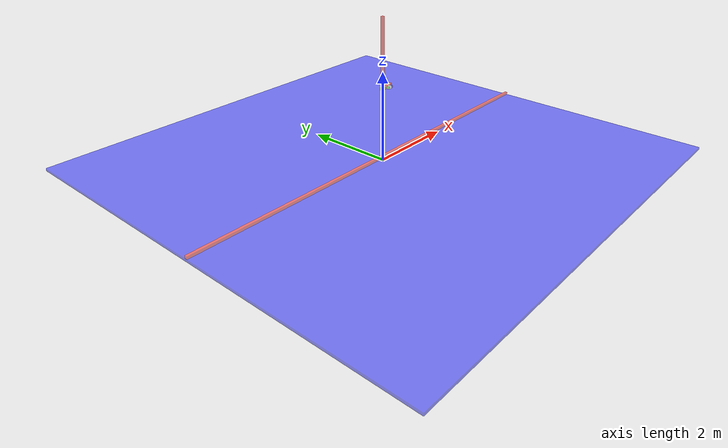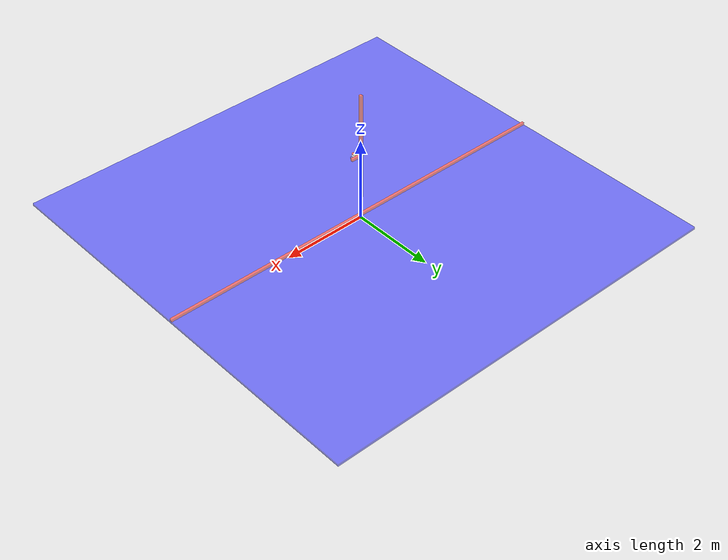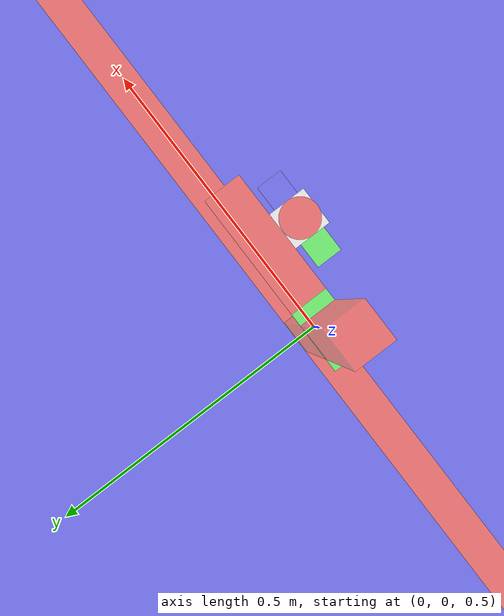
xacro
<robot xmlns:xacro="http://www.ros.org/wiki/xacro" name="robot">
  <xacro:property name="transparency" value="0.5" />

  <xacro:include filename="$(find arm_robot)/model/util/util.xacro" />

  <!-- |    for arm params   | -->
  <xacro:property name="link0_length" value="10.0" />
  <xacro:property name="link0_width" value="0.06" />

  <xacro:property name="link1_length" value="0.06" />
  <xacro:property name="link1_width" value="0.06" />

  <xacro:property name="link2_length" value="3.0" />
  <xacro:property name="link2_width" value="0.06" />

  <xacro:property name="link3_length" value="0.1" />
  <xacro:property name="link3_width" value="0.06" />

  <xacro:property name="link4_length" value="0.2" />
  <xacro:property name="link4_width" value="0.06" />

  <xacro:property name="platform_width" value="10.0" />
  <xacro:property name="platform_length" value="0.06" />
  <xacro:property name="platform_mass" value="1000000.0" />

  <xacro:property name="link0_mass" value="50000" />
  <xacro:property name="link1_mass" value="50000" />
  <xacro:property name="link2_mass" value="100" />
  <xacro:property name="link3_mass" value="10" />
  <xacro:property name="link4_mass" value="0.1" />

  <!-- |    for robot params   | -->

  <xacro:property name="base_box_size" value="0.06" />

  <xacro:property name="imu_box_size" value="0.04" />

  <xacro:property name="lidar_cylinder_radius" value="0.03" />
  <xacro:property name="lidar_cylinder_length" value="0.03" />

  <xacro:property name="arm_cylinder_radius" value="0.005" />
  <xacro:property name="arm_cylinder_length" value="0.03" />

  <xacro:property name="wheel_cylinder_radius" value="0.08" />
  <xacro:property name="wheel_cylinder_length" value="0.04" />
  <xacro:property name="ground_clearance" value="0.03" />

  <xacro:property name="camera_box_size" value="0.04" />

  <xacro:property name="PI" value="3.1415926535" />

  <xacro:property name="base_mass" value="0.001" />
  <xacro:property name="lidar_mass" value="0.001" />
  <xacro:property name="arm_mass" value="0.001" />
  <xacro:property name="imu_mass" value="0.001" />
  <xacro:property name="camera_mass" value="0.001" />

  <!-- | for link robot and arm| -->

  <xacro:include filename="$(find arm_robot)/model/arm/arm.xacro" />

  <xacro:include filename="$(find arm_robot)/model/robot/robot.xacro" />

  <xacro:gazebo-joint joint="link0_to_platform" transmission="hardware_interface/PositionJointInterface" />
  <xacro:gazebo-joint joint="link0_to_platform" transmission="hardware_interface/VelocityJointInterface" />
  <xacro:gazebo-joint joint="link0_to_platform" transmission="hardware_interface/EffortJointInterface" />

  <xacro:gazebo-joint joint="link1_to_link0" transmission="hardware_interface/PositionJointInterface" />
  <xacro:gazebo-joint joint="link1_to_link0" transmission="hardware_interface/VelocityJointInterface" />
  <xacro:gazebo-joint joint="link1_to_link0" transmission="hardware_interface/EffortJointInterface" />

  <xacro:gazebo-joint joint="link2_to_link1" transmission="hardware_interface/PositionJointInterface" />
  <xacro:gazebo-joint joint="link2_to_link1" transmission="hardware_interface/VelocityJointInterface" />
  <xacro:gazebo-joint joint="link2_to_link1" transmission="hardware_interface/EffortJointInterface" />

  <xacro:gazebo-joint joint="link3_to_link2" transmission="hardware_interface/PositionJointInterface" />
  <xacro:gazebo-joint joint="link3_to_link2" transmission="hardware_interface/VelocityJointInterface" />
  <xacro:gazebo-joint joint="link3_to_link2" transmission="hardware_interface/EffortJointInterface" />

  <xacro:gazebo-joint joint="link4_to_link3" transmission="hardware_interface/PositionJointInterface" />
  <xacro:gazebo-joint joint="link4_to_link3" transmission="hardware_interface/VelocityJointInterface" />
  <xacro:gazebo-joint joint="link4_to_link3" transmission="hardware_interface/EffortJointInterface" />

  <xacro:gazebo-joint joint="base_to_link4" transmission="hardware_interface/PositionJointInterface" />
  <xacro:gazebo-joint joint="base_to_link4" transmission="hardware_interface/VelocityJointInterface" />
  <xacro:gazebo-joint joint="base_to_link4" transmission="hardware_interface/EffortJointInterface" />

  <gazebo>
    <plugin name="gazebo_ros_control" filename="libgazebo_ros_control.so"></plugin>
  </gazebo>

</robot>

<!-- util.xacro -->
<robot xmlns:xacro="http://www.ros.org/wiki/xacro" name="macro">
  <xacro:macro name="cylinder_inertial_matrix" params="m r h">
    <inertial>
      <mass value="${m}" />
      <inertia ixx="${m*(3*r*r+h*h)/12}" ixy="0" ixz="0" iyy="${m*(3*r*r+h*h)/12}" iyz="0" izz="${m*r*r/2}" />
    </inertial>
  </xacro:macro>

  <xacro:macro name="box_inertial_matrix" params="m l w h">
    <inertial>
      <mass value="${m}" />
      <inertia ixx="${m*(h*h + l*l)/12}" ixy="0" ixz="0" iyy="${m*(w*w + l*l)/12}" iyz="0" izz="${m*(w*w + h*h)/12}" />
    </inertial>
  </xacro:macro>

  <xacro:macro name="sphere_inertial_matrix" params="m r">
    <inertial>
      <mass value="${m}" />
      <inertia ixx="${2*m*r*r/5}" ixy="0" ixz="0" iyy="${2*m*r*r/5}" iyz="0" izz="${2*m*r*r/5}" />
    </inertial>
  </xacro:macro>

  <xacro:macro name="gazebo-joint" params="joint transmission:=hardware_interface/EffortJointInterface">
    <gazebo reference="${joint}">
      <!-- Needed for ODE to output external wrenches on joints -->
      <provideFeedback>true</provideFeedback>
    </gazebo>

    <transmission name="${joint}_transmission">
      <type>transmission_interface/SimpleTransmission</type>
      <joint name="${joint}">
        <hardwareInterface>${transmission}</hardwareInterface>
      </joint>
      <actuator name="${joint}_motor">
        <hardwareInterface>${transmission}</hardwareInterface>
      </actuator>
    </transmission>
  </xacro:macro>

  <xacro:macro name="gazebo-friction" params="link mu">
    <gazebo reference="${link}">
      <collision>
        <max_contacts>10</max_contacts>
        <surface>
          <contact>
            <ode>
              <!-- These two parameter need application specific tuning. -->
              <!-- Usually you want no "snap out" velocity and a generous -->
              <!-- penetration depth to keep the grasping stable -->
              <max_vel>0</max_vel>
              <min_depth>0.001</min_depth>
            </ode>
          </contact>
          <friction>
            <ode>
              <mu>${mu}</mu>
              <mu2>${mu}</mu2>
            </ode>
          </friction>
          <bounce />
        </surface>
      </collision>
    </gazebo>
  </xacro:macro>

  <xacro:macro name="joint-dynamic">
    <dynamics D="1" K="7000" damping="0.003" friction="10.0" mu_coulomb="0" mu_viscous="16" />
  </xacro:macro>

  <xacro:macro name="remove-collision">
    <collision>
      <geometry>
        <box size="0.001 0.001 0.001" />
      </geometry>
      <origin xyz="0.0 0.0 1000.0" rpy="0 0 0" />
    </collision>
  </xacro:macro>

</robot>

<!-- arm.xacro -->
<robot xmlns:xacro="http://www.ros.org/wiki/xacro" name="robot">

  <link name="platform_footprint"></link>

  <link name="platform">
    <visual>
      <geometry>
        <box size="${platform_width} ${platform_width} ${platform_length}" />
      </geometry>
      <material name="blue">
        <color rgba="0 0 1.0 ${transparency}" />
      </material>
    </visual>
    <collision>
      <geometry>
        <box size="${platform_width} ${platform_width} ${platform_length}" />
      </geometry>
    </collision>
    <xacro:box_inertial_matrix m="${platform_mass}" l="${platform_width}" w="${platform_width}" h="${platform_length}" />
  </link>

  <joint name="platform_to_footprint" type="fixed">
    <parent link="platform_footprint" />
    <child link="platform" />
    <origin xyz="0.0 0.0 ${0.5 * platform_length}" rpy="0 0 0" />
    <axis xyz="0 1 0" />
  </joint>

  <gazebo reference="platform">
    <material>Gazebo/Blue</material>
  </gazebo>
  <link name="link0">
    <visual>
      <geometry>
        <box size="${link0_length} ${link0_width} ${link0_width}" />
      </geometry>
      <material name="red">
        <color rgba="1.0 0 0 ${transparency}" />
      </material>
    </visual>
    <collision>
      <geometry>
        <box size="${link0_length} ${link0_width} ${link0_width}" />
      </geometry>
    </collision>
    <xacro:box_inertial_matrix m="${link0_mass}" l="${link0_length}" w="${link0_width}" h="${link0_width}" />
  </link>

  <joint name="link0_to_platform" type="prismatic">
    <parent link="platform" />
    <child link="link0" />
    <origin xyz="0.0 0.0 ${platform_length * 0.5 + link0_width * 0.5}" rpy="0 0 0" />
    <axis xyz="0 1 0" />
    <limit lower="-${platform_width * 0.5 - link0_width * 0.5}" upper="${platform_width * 0.5 - link0_width * 0.5}" effort="10000000.0" velocity="1000000.0" />
    <xacro:joint-dynamic />

  </joint>

  <gazebo reference="link0">
    <material>Gazebo/Red</material>
  </gazebo>

  <link name="link1">
    <visual>
      <geometry>
        <box size="${link1_width} ${link1_width} ${link1_length}" />
      </geometry>
      <material name="green">
        <color rgba="0 1.0 0 ${transparency}" />
      </material>
    </visual>
    <collision>
      <geometry>
        <box size="${link1_width} ${link1_width} ${link1_length}" />
      </geometry>
    </collision>
    <xacro:box_inertial_matrix m="${link1_mass}" l="${link1_width}" w="${link1_width}" h="${link1_length}" />
  </link>

  <joint name="link1_to_link0" type="prismatic">
    <parent link="link0" />
    <child link="link1" />
    <origin xyz="0.0 0.0 ${0.5 * link1_length}" rpy="0 0 0" />
    <axis xyz="1 0 0" />
    <limit lower="-${link0_length * 0.5 - link1_width * 0.5}" upper="${link0_length * 0.5 - link1_width * 0.5}" effort="10000000.0" velocity="1000000.0" />
    <xacro:joint-dynamic />

  </joint>

  <gazebo reference="link1">
    <material>Gazebo/Green</material>
  </gazebo>

  <link name="link2">
    <visual>
      <geometry>
        <box size="${link2_width} ${link2_width} ${link2_length}" />
      </geometry>
      <material name="red">
        <color rgba="1.0 0 0 ${transparency}" />
      </material>
    </visual>
    <collision>
      <geometry>
        <box size="${link2_width} ${link2_width} ${link2_length}" />
      </geometry>
    </collision>
    <xacro:box_inertial_matrix m="${link2_mass}" l="${link2_width}" w="${link2_width}" h="${link2_length}" />
  </link>

  <joint name="link2_to_link1" type="continuous">
    <parent link="link1" />
    <child link="link2" />
    <origin xyz="0.0 0.0 ${link1_length * 0.5 + link2_length * 0.5}" rpy="0 0 0" />
    <axis xyz="0 0 1" />
    <xacro:joint-dynamic />
  </joint>

  <gazebo reference="link2">
    <material>Gazebo/Red</material>
  </gazebo>

  <link name="link3">
    <visual>
      <geometry>
        <box size="${link3_length} ${link3_width} ${link3_width}" />
      </geometry>
      <material name="green"></material>
    </visual>
    <collision>
      <geometry>
        <box size="${link3_length} ${link3_width} ${link3_width}" />
      </geometry>
    </collision>
    <xacro:box_inertial_matrix m="${link3_mass}" l="${link3_length}" w="${link3_width}" h="${link3_width}" />
  </link>

  <joint name="link3_to_link2" type="prismatic">
    <parent link="link2" />
    <child link="link3" />
    <origin xyz="0 0 0" rpy="0 0 0" />
    <axis xyz="0 0 1" />
    <limit lower="-${link2_length * 0.5 - link3_width * 3.0}" upper="${link2_length * 0.5 - link3_width * 0.5}" effort="10000000.0" velocity="1000000.0" />
    <xacro:joint-dynamic />

  </joint>

  <gazebo reference="link3">
    <material>Gazebo/Green</material>
  </gazebo>

  <link name="link4">
    <visual>
      <geometry>
        <box size="${link4_length} ${link4_width} ${link4_width}" />
      </geometry>
      <material name="red"></material>
    </visual>
    <collision>
      <geometry>
        <box size="${link4_length} ${link4_width} ${link4_width}" />
      </geometry>
    </collision>
    <xacro:box_inertial_matrix m="${link4_mass}" l="${link4_length}" w="${link4_width}" h="${link4_width}" />
  </link>

  <joint name="link4_to_link3" type="continuous">
    <parent link="link3" />
    <child link="link4" />
    <origin xyz="${link3_length * 0.5 + link4_length * 0.5} 0.0 0.0" rpy="0 0 0" />
    <axis xyz="1 0 0" />
    <xacro:joint-dynamic />
  </joint>

  <gazebo reference="link4">
    <material>Gazebo/Red</material>
  </gazebo>

</robot>

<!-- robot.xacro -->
<robot xmlns:xacro="http://www.ros.org/wiki/xacro" name="sim-robot">

  <!-- base link -->
  <link name="base_link">
    <visual>
      <geometry>
        <box size="${base_box_size} ${base_box_size} ${base_box_size}" />
      </geometry>
      <material name="white">
        <color rgba="1.0 1.0 1.0 ${transparency}" />
      </material>
    </visual>
    <collision>
      <geometry>
        <box size="${base_box_size} ${base_box_size} ${base_box_size}" />
      </geometry>
    </collision>
    <xacro:box_inertial_matrix m="${base_mass}" l="${base_box_size}" w="${base_box_size}" h="${base_box_size}" />
  </link>

  <gazebo reference="base_link">
    <material>Gazebo/White</material>
  </gazebo>

  <!-- joint -->

  <joint name="base_to_link4" type="continuous">
    <parent link="link4" />
    <child link="base_link" />
    <origin xyz="0.0 -${base_box_size * 0.5 + link4_width * 0.5} 0.0" rpy="0 0 0" />
    <axis xyz="0 1 0" />
    <xacro:joint-dynamic />
  </joint>

  <xacro:include filename="lidar.xacro" />
  <xacro:include filename="imu.xacro" />
  <xacro:include filename="camera.xacro" />

  <xacro:include filename="sensor-laser.xacro" />
  <xacro:include filename="sensor-imu.xacro" />
  <xacro:include filename="sensor-camera.xacro" />

</robot>

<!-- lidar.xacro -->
<robot xmlns:xacro="http://www.ros.org/wiki/xacro" name="lidar">
  <!-- lidar -->
  <link name="arm">
    <visual>
      <geometry>
        <cylinder radius="${arm_cylinder_radius}" length="${arm_cylinder_length}" />
      </geometry>
      <origin xyz="0.0 0.0 0.0" rpy="0.0 0.0 0.0" />
      <material name="black">
        <color rgba="0.0 0.0 0.0 ${transparency}" />
      </material>
    </visual>
    <collision>
      <geometry>
        <cylinder radius="${arm_cylinder_radius}" length="${arm_cylinder_length}" />
      </geometry>
    </collision>
    <xacro:cylinder_inertial_matrix m="${arm_mass}" r="${arm_cylinder_radius}" h="${arm_cylinder_length}" />
  </link>

  <!-- joint -->
  <joint name="arm_to_base_link" type="fixed">
    <parent link="base_link" />
    <child link="arm" />
    <origin xyz="0.0 0.0 ${base_box_size * 0.5 + arm_cylinder_length * 0.5}" rpy="0.0 0.0 0.0" />
    <axis xyz="0.0 0.0 1.0" />
  </joint>

  <gazebo reference="arm">
    <material>Gazebo/Black</material>
  </gazebo>

  <!-- lidar -->
  <link name="lidar">
    <visual>
      <geometry>
        <cylinder radius="${lidar_cylinder_radius}" length="${lidar_cylinder_length}" />
      </geometry>
      <origin xyz="0.0 0.0 0.0" rpy="0.0 0.0 0.0" />
      <material name="red">
        <color rgba="1.0 0.0 0.0 ${transparency}" />
      </material>
    </visual>
    <collision>
      <geometry>
        <cylinder radius="${lidar_cylinder_radius}" length="${lidar_cylinder_length}" />
      </geometry>
    </collision>
    <xacro:cylinder_inertial_matrix m="${lidar_mass}" r="${lidar_cylinder_radius}" h="${lidar_cylinder_length}" />
  </link>

  <!-- joint -->
  <joint name="lidar_to_arm" type="fixed">
    <parent link="arm" />
    <child link="lidar" />
    <origin xyz="0.0 0.0 ${arm_cylinder_length * 0.5 + lidar_cylinder_length * 0.5}" rpy="0.0 0.0 0.0" />
    <axis xyz="0.0 0.0 1.0" />
  </joint>

  <gazebo reference="lidar">
    <material>Gazebo/Red</material>
  </gazebo>
</robot>

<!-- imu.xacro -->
<robot xmlns:xacro="http://www.ros.org/wiki/xacro" name="imu">
  <!-- imu -->
  <link name="imu">
    <visual>
      <geometry>
        <box size="${imu_box_size} ${imu_box_size} ${imu_box_size}" />
      </geometry>
      <origin xyz="0.0 0.0 0.0" rpy="0.0 0.0 0.0" />
      <material name="green">
        <color rgba="0.0 1.0 0.0 ${transparency}" />
      </material>
    </visual>
    <collision>
      <geometry>
        <box size="${imu_box_size} ${imu_box_size} ${imu_box_size}" />
      </geometry>
    </collision>
    <xacro:box_inertial_matrix m="${imu_mass}" l="${imu_box_size}" w="${imu_box_size}" h="${imu_box_size}" />
  </link>

  <!-- joint -->
  <joint name="imu_to_base_link" type="fixed">
    <parent link="base_link" />
    <child link="imu" />
    <origin xyz="-${base_box_size * 0.5 + imu_box_size * 0.5} 0.0 0.0" rpy="0.0 0.0 0.0" />
    <axis xyz="0.0 0.0 1.0" />
  </joint>

  <gazebo reference="imu">
    <material>Gazebo/Green</material>
  </gazebo>
</robot>

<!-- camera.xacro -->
<robot xmlns:xacro="http://www.ros.org/wiki/xacro" name="camera">
  <!-- camera -->
  <link name="camera">
    <visual>
      <geometry>
        <box size="${camera_box_size} ${camera_box_size} ${camera_box_size}" />
      </geometry>
      <origin xyz="0.0 0.0 0.0" rpy="0.0 0.0 0.0" />
      <material name="blue">
        <color rgba="0.0 0.0 1.0 ${transparency}" />
      </material>
    </visual>
    <collision>
      <geometry>
        <box size="${camera_box_size} ${camera_box_size} ${camera_box_size}" />
      </geometry>
    </collision>
    <xacro:box_inertial_matrix m="${camera_mass}" l="${camera_box_size}" w="${camera_box_size}" h="${camera_box_size}" />
  </link>

  <!-- joint -->
  <joint name="camera_to_base_link" type="fixed">
    <parent link="base_link" />
    <child link="camera" />
    <origin xyz="${base_box_size * 0.5 + camera_box_size * 0.5} 0.0 0.0" rpy="0.0 0.0 0.0" />
    <axis xyz="0.0 0.0 1.0" />
  </joint>

  <gazebo reference="camera">
    <material>Gazebo/Blue</material>
  </gazebo>

</robot>
